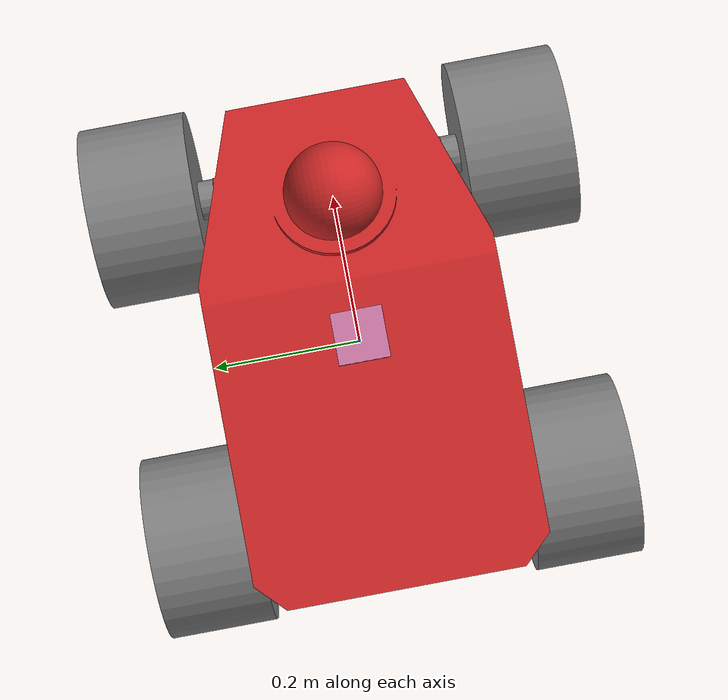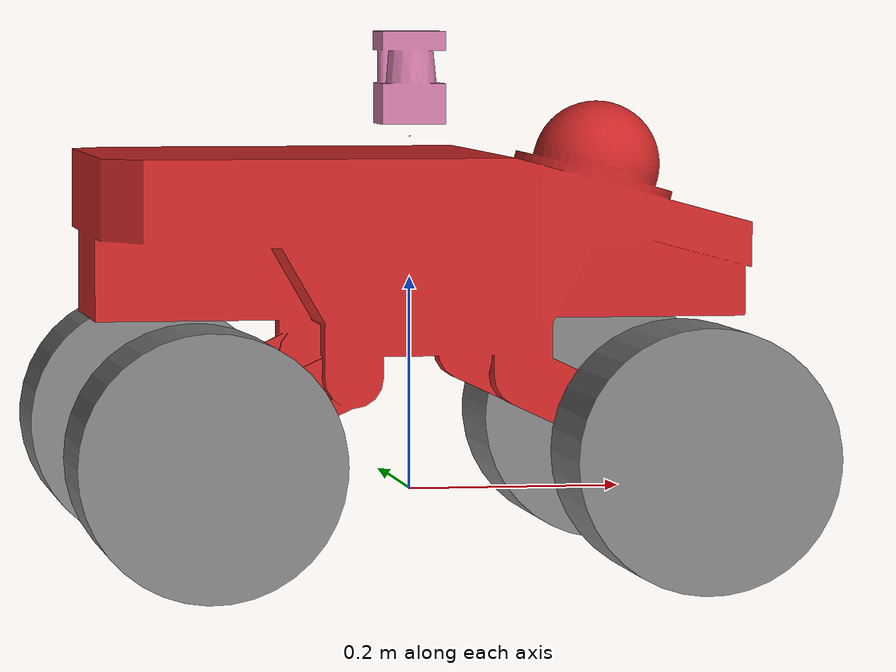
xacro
<?xml version="1.0"?>
<robot name="summit_xl" xmlns:xacro="http://www.ros.org/wiki/xacro">

  <!-- Import all Gazebo-customization elements, including Gazebo colors -->
  <xacro:include filename="$(find summit_xl_description)/urdf/summit_xl.gazebo"/>

  <!-- Robot mechanical and motor parameters -->
  <xacro:property name="PI" value="3.1415926535897931"/>
  <xacro:property name="wheel_offset_x" value="0.223" />    <!-- x,y,z in base_footprint CS -->
  <xacro:property name="wheel_offset_y" value="0.154" />
  <xacro:property name="wheel_offset_z" value="0.0" />
  <xacro:property name="wheel_joint_damping" value="0.0" />
  <xacro:property name="wheel_joint_friction" value="0.0" />
  <xacro:property name="wheel_joint_effort_limit" value="200.0" />
  <xacro:property name="wheel_joint_velocity_limit" value="200.0" />
  <xacro:property name="wheel_mechanical_reduction" value="1.0" />
  <xacro:property name="wheel_width" value="0.175" />

  <xacro:property name="ptz_joint_effort_limit" value="100.0" />
  <xacro:property name="ptz_joint_velocity_limit" value="100.0"/>
  <xacro:property name="ptz_joint_friction" value="0.1" />
  <xacro:property name="ptz_joint_damping" value="0.1" />
  <xacro:property name="ptz_mechanical_reduction" value="1.0" />

  <!-- Used for fixing robot to Gazebo 'base_link' -->

  <!-- BASE FOOTPRINT -->
  <!-- base_footprint is a fictitious link(frame) that is on the ground right below base_link origin,
             navigation stack depends on this frame -->
  <link name="base_footprint">
      <visual>
          <origin xyz="0 0 0" rpy="0 0 0" />
          <geometry>
             <box size="0.001 0.001 0.001" />
          </geometry>
      </visual>

      <collision>
          <origin xyz="0 0 0" rpy="0 0 0" />
          <geometry>
            <box size="0.001 0.001 0.001" />
         </geometry>
     </collision>
  </link>

  <joint name="base_footprint_joint" type="fixed">
     <!-- NB While you would think this would make it go up, it is oddly reversed.
      This moves the joint to 0,0,0 where we want it for rviz, etc. -->
     <origin xyz="0 0 0.050" rpy="0 0 0" />
     <parent link="base_footprint"/>
     <child link="base_link" />
  </joint>

  <!-- BASE_LINK (RED) -->
  <link name="base_link">
    <inertial>
      <mass value="25.0" />
      <origin xyz="0 0 0" />
      <inertia  ixx="1.391" ixy="0.004"  ixz="0.0"  iyy="6.853"  iyz="0.0"  izz="6.125" />
    </inertial>
    <visual>
       <origin xyz="0 0 0" rpy="0 0 0" />
       <geometry>
	 <mesh filename="package://summit_xl_description/meshes/summit_xl_chassis_cam1.dae"/>
       </geometry>
    </visual>
    <collision>
       <origin xyz="0 0 0" rpy="0 0 0 " />
       <geometry>
         <mesh filename="package://summit_xl_description/meshes/summit_xl_chassis_cam1.dae"/>
	     <!-- box size = "0.750 0.4 0.3"/ -->
       </geometry>
    </collision>
  </link>

  <!-- BACK LEFT WHEEL (GREY) -->
  <link name="back_left_wheel">
    <inertial>
      <mass value="1.250" />
      <origin xyz="0 0 0" />
      <inertia  ixx="0.0109375" ixy="0.0"  ixz="0.0"  iyy="0.021125"  iyz="0.0"  izz="0.0109375" />
    </inertial>
    <visual>
       <origin xyz="0 0 0" rpy="0 0 0" />
       <geometry>
	 <mesh filename="package://summit_xl_description/meshes/summit_xl_wheel.dae" scale="1.0 1.0 1.0"/>
       <!-- cylinder radius="0.125" length="0.1"/ -->
       </geometry>
	<material name="grey">
	   <color rgba="0.5 0.5 0.5 1"/>
       </material>
    </visual>
    <collision>
       <origin xyz="0 0 0" rpy="0 0 0" />
       <geometry>
	    <mesh filename="package://summit_xl_description/meshes/summit_xl_wheel.dae" scale="1.0 1.0 1.0"/>
       </geometry>
    </collision>
  </link>

  <joint name="joint_back_left_wheel" type="continuous">
    <parent link="base_link"/>
    <child link="back_left_wheel"/>
    <origin xyz="-${wheel_offset_x} ${wheel_offset_y} 0" rpy="0 0 0" />
    <axis xyz="0 1 0" rpy="0 0 0" />
    <limit effort="${wheel_joint_effort_limit}" velocity="${wheel_joint_velocity_limit}"/>
    <joint_properties damping="${wheel_joint_damping}" friction="{wheel_joint_friction}"/>
  </joint>

  <transmission name="joint_blw_trans">
	 <type>transmission_interface/SimpleTransmission</type>
     <joint name="joint_back_left_wheel" />
     <actuator name="joint_blw_motor">
	    <hardwareInterface>EffortJointInterface</hardwareInterface>
        <mechanicalReduction>${wheel_mechanical_reduction}</mechanicalReduction>
     </actuator>
  </transmission>

  <!-- BACK RIGHT WHEEL (GREY) -->
  <link name="back_right_wheel">
    <inertial>
      <mass value="1.250" />
      <origin xyz="0 0 0" rpy="0 0 ${PI}" />
      <inertia  ixx="0.0109375" ixy="0.0"  ixz="0.0"  iyy="0.021125"  iyz="0.0"  izz="0.0109375" />
    </inertial>
    <visual>
       <origin xyz="0 0 0" rpy="0 0 ${PI}" />
       <geometry>
			   <mesh filename="package://summit_xl_description/meshes/summit_xl_wheel.dae" scale="1.0 1.0 1.0"/>
         <!-- cylinder radius="0.125" length="0.1"/ -->
       </geometry>
	     <material name="grey">
	       <color rgba="0.5 0.5 0.5 1"/>
       </material>
    </visual>
    <collision>
       <origin xyz="0 0 0" rpy="0 0 ${PI}" />
       <geometry>
	       <mesh filename="package://summit_xl_description/meshes/summit_xl_wheel.dae" scale="1.0 1.0 1.0"/>
       </geometry>
    </collision>
  </link>

  <joint name="joint_back_right_wheel" type="continuous">
    <parent link="base_link"/>
    <child link="back_right_wheel"/>
    <origin xyz="-${wheel_offset_x} -${wheel_offset_y} 0" rpy="0 0 0" />
    <axis xyz="0 1 0" rpy="0 0 0" />
    <limit effort="${wheel_joint_effort_limit}" velocity="${wheel_joint_velocity_limit}"/>
    <joint_properties damping="${wheel_joint_damping}" friction="{wheel_joint_friction}"/>
  </joint>

  <transmission name="joint_brw_trans">
    <type>transmission_interface/SimpleTransmission</type>
    <joint name="joint_back_right_wheel" />
    <actuator name="joint_brw_motor">
	   <hardwareInterface>EffortJointInterface</hardwareInterface>
       <mechanicalReduction>${wheel_mechanical_reduction}</mechanicalReduction>
    </actuator>
  </transmission>

  <!-- FRONT LEFT WHEEL (GREY) -->
  <link name="front_left_wheel">
    <inertial>
      <mass value="1.250" rpy="0 0 0"/>
      <origin xyz="0 0 0" />
      <inertia  ixx="0.0109375" ixy="0.0"  ixz="0.0"  iyy="0.021125"  iyz="0.0"  izz="0.0109375" />
    </inertial>
    <visual>
       <origin xyz="0 0 0" rpy="0 0 0" />
       <geometry>
	       <mesh filename="package://summit_xl_description/meshes/summit_xl_wheel.dae" scale="1.0 1.0 1.0"/>
       </geometry>
	      <material name="grey">
		      <color rgba="0.5 0.5 0.5 1"/>
      	</material>
    </visual>
    <collision>
       <origin xyz="0 0 0" rpy="0 0 0" />
       <geometry>
	       <mesh filename="package://summit_xl_description/meshes/summit_xl_wheel.dae" scale="1.0 1.0 1.0"/>
         <!-- cylinder radius="0.125" length="0.1"/ -->
       </geometry>
    </collision>
  </link>

  <joint name="joint_front_left_wheel" type="continuous">
    <parent link="base_link"/>
    <child link="front_left_wheel"/>
    <origin xyz="${wheel_offset_x} ${wheel_offset_y} 0" rpy="0 0 0" />
    <axis xyz="0 1 0" rpy="0 0 0" />
    <limit effort="${wheel_joint_effort_limit}" velocity="${wheel_joint_velocity_limit}"/>
    <joint_properties damping="${wheel_joint_damping}" friction="{wheel_joint_friction}"/>
  </joint>

  <transmission name="joint_flw_trans">
	 <type>transmission_interface/SimpleTransmission</type>
     <joint name="joint_front_left_wheel" />
     <actuator name="joint_flw_motor">
	   <hardwareInterface>EffortJointInterface</hardwareInterface>
       <mechanicalReduction>${wheel_mechanical_reduction}</mechanicalReduction>
     </actuator>
  </transmission>

  <!-- FRONT RIGHT WHEEL (GREY) -->
  <link name="front_right_wheel">
    <inertial>
      <mass value="1.250" rpy="0 0 ${PI}"/>
      <origin xyz="0 0 0" />
      <inertia  ixx="0.0109375" ixy="0.0"  ixz="0.0"  iyy="0.021125"  iyz="0.0"  izz="0.0109375" />
    </inertial>
    <visual>
       <origin xyz="0 0 0" rpy="0 0 ${PI}" />
       <geometry>
		     <mesh filename="package://summit_xl_description/meshes/summit_xl_wheel.dae" scale="1.0 1.0 1.0"/>
         <!-- cylinder radius="0.125" length="0.1"/ -->
       </geometry>
	     <material name="grey">
		     <color rgba="0.5 0.5 0.5 1"/>
       </material>
    </visual>
    <collision>
       <origin xyz="0 0 0" rpy="0 0 ${PI}" />
       <geometry>
	       <mesh filename="package://summit_xl_description/meshes/summit_xl_wheel.dae" scale="1.0 1.0 1.0"/>
         <!-- cylinder radius="0.125" length="0.1"/ -->
       </geometry>
    </collision>
  </link>

  <joint name="joint_front_right_wheel" type="continuous">
    <parent link="base_link"/>
    <child link="front_right_wheel"/>
    <origin xyz="${wheel_offset_x} -${wheel_offset_y} 0" rpy="0 0 0" />
    <axis xyz="0 1 0" rpy="0 0 0" />
    <limit effort="${wheel_joint_effort_limit}" velocity="${wheel_joint_velocity_limit}"/>
    <joint_properties damping="${wheel_joint_damping}" friction="{wheel_joint_friction}"/>
  </joint>

  <transmission name="joint_frw_trans">
	 <type>transmission_interface/SimpleTransmission</type>
     <joint name="joint_front_right_wheel" />
     <actuator name="joint_frw_motor">
	   <hardwareInterface>EffortJointInterface</hardwareInterface>
       <mechanicalReduction>${wheel_mechanical_reduction}</mechanicalReduction>
     </actuator>
  </transmission>

  <!-- HOKUYO SENSOR -->
  <joint name="hokuyo_laser_joint" type="fixed">
     <axis xyz="0 1 0" />
     <!-- FRONT MOUNT -->
     <!-- origin xyz="0.29 0 0.1"/ -->
     <!-- TOP MOUNT -->
     <origin xyz="0.0 0.0 0.325"/>
     <parent link="base_link"/>
     <child link="hokuyo_laser_link"/>
  </joint>

  <!-- Hokuyo Laser -->
  <link name="hokuyo_laser_link">
    <collision>
      <origin xyz="0 0 0" rpy="0 0 0"/>
      <geometry>
	<box size="0.1 0.1 0.1"/>
      </geometry>
    </collision>

    <visual>
      <origin xyz="0 0 0" rpy="0 0 0"/>
      <geometry>
        <mesh filename="package://summit_xl_description/meshes/hokuyo-utm30-lx.dae"/>
      </geometry>
    </visual>

    <inertial>
      <mass value="1e-5" />
      <origin xyz="0 0 0" rpy="0 0 0"/>
      <inertia ixx="1e-6" ixy="0" ixz="0" iyy="1e-6" iyz="0" izz="1e-6" />
    </inertial>
  </link>

  <!-- IMU SENSOR -->
  <joint name="imu_joint" type="fixed">
      <axis xyz="1 0 0"/>
      <origin xyz="0 0 0.2825"/>
      <parent link="base_link"/>
      <child link="imu_link"/>
  </joint>

  <link name="imu_link">
      <inertial>
        <mass value="0.001"/>
        <origin rpy="0 0 0" xyz="0 0 0"/>
        <inertia ixx="0.0001" ixy="0" ixz="0" iyy="0.000001" iyz="0" izz="0.0001"/>
      </inertial>
      <visual>
        <origin rpy="0 0 0" xyz="0 0 0"/>
        <geometry>
          <box size="0.001 0.001 0.001"/>
        </geometry>
      </visual>
      <collision>
        <origin rpy="0 0 0" xyz="0 0 0"/>
        <geometry>
          <box size=".001 .001 .001"/>
        </geometry>
      </collision>
  </link>

  <!-- AXIS PTZ CAMERA WITH PAN AND TILT -->
  <link name="camera_base_link">
     <inertial>
       <mass value="0.1" />
       <origin xyz="0 0 0" rpy="0 0 0" />
       <inertia ixx="0.1" ixy="0" ixz="0" iyy="0.1" iyz="0" izz="0.1" />
    </inertial>
  </link>
  <joint name="joint_camera" type="fixed">
     <axis xyz="0 1 0" />
     <origin xyz="0.180 0.0 0.270"/>
     <parent link="base_link"/>
     <child link="camera_base_link"/>
  </joint>
  <link name="camera_pan_link">
     <inertial>
       <mass value="0.1" />
       <origin xyz="0 0 0" rpy="0 0 0" />
       <inertia ixx="0.1" ixy="0" ixz="0" iyy="0.1" iyz="0" izz="0.1" />
    </inertial>
  </link>
  <joint name="joint_camera_pan" type="continuous">
     <axis xyz="0 0 1" />
     <origin xyz="0.0 0.0 0.0"/>
     <parent link="camera_base_link"/>
     <child link="camera_pan_link"/>
     <limit effort="${ptz_joint_effort_limit}" velocity="${ptz_joint_velocity_limit}" lower="-3.1416" upper="3.1416"/>
     <joint_properties damping="${ptz_joint_damping}" friction="{ptz_joint_friction}"/>
  </joint>
  <transmission name="joint_pan_trans">
	 <type>transmission_interface/SimpleTransmission</type>
     <joint name="joint_camera_pan" />
     <actuator name="pan_motor">
	   <hardwareInterface>EffortJointInterface</hardwareInterface>
       <mechanicalReduction>${ptz_mechanical_reduction}</mechanicalReduction>
     </actuator>
  </transmission>

  <link name="camera_tilt_link">
     <inertial>
       <mass value="0.1" />
       <origin xyz="0 0 0" rpy="0 0 0" />
       <inertia ixx="0.1" ixy="0" ixz="0" iyy="0.1" iyz="0" izz="0.1" />
    </inertial>
  </link>
  <joint name="joint_camera_tilt" type="continuous">
     <axis xyz="0 1 0" />
     <origin xyz="0.0 0.0 0.0"/>
     <parent link="camera_pan_link"/>
     <child link="camera_tilt_link"/>
     <limit effort="${ptz_joint_effort_limit}" velocity="${ptz_joint_velocity_limit}" lower="-1.5708" upper="1.5708"/>
     <joint_properties damping="${ptz_joint_damping}" friction="{ptz_joint_friction}"/>
  </joint>
  <transmission name="joint_tilt_trans">
	 <type>transmission_interface/SimpleTransmission</type>
     <joint name="joint_camera_tilt" />
     <actuator name="tilt_motor">
	   <hardwareInterface>EffortJointInterface</hardwareInterface>
       <mechanicalReduction>${ptz_mechanical_reduction}</mechanicalReduction>
     </actuator>
  </transmission>

</robot>
